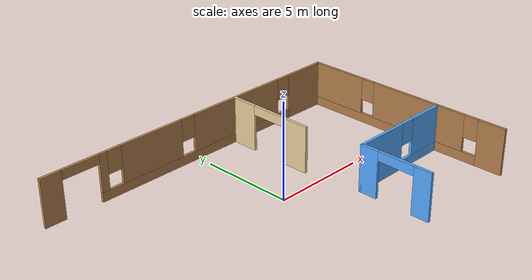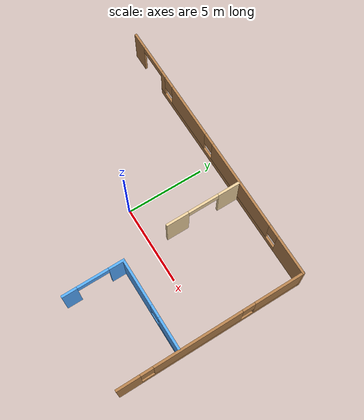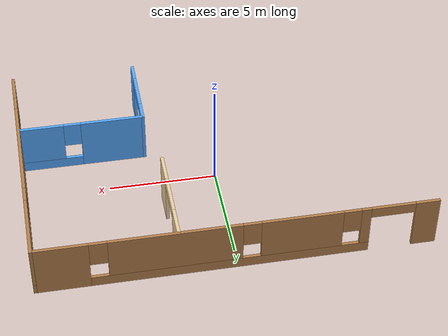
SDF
<sdf version="1.6">
 <model name="mybuilding">
  <link name="Wall_27">
   <pose>8.94289 0 0 0 -0 1.5708</pose>
   <visual name="Wall_27_Visual_0">
    <pose>-5.24969 0 1.25 0 -0 0</pose>
    <geometry><box><size>1.50062 0.15 2.5</size></box></geometry>
    <material>
     <script><uri>file://media/materials/scripts/gazebo.material</uri><name>Gazebo/Wood</name></script>
     <ambient>1 1 1 1</ambient>
     <shader type="pixel"/>
     <diffuse>1 1 1 1</diffuse>
     <specular>0.2 0.2 0.2 1</specular>
     <emissive>0 0 0 1</emissive>
    </material>
    <meta><layer>0</layer></meta>
   </visual>
   <visual name="Wall_27_Visual_1">
    <pose>0.750309 0 0.25 0 -0 0</pose>
    <geometry><box><size>10.4994 0.15 0.5</size></box></geometry>
    <material>
     <script><uri>file://media/materials/scripts/gazebo.material</uri><name>Gazebo/Wood</name></script>
     <ambient>1 1 1 1</ambient>
     <shader type="pixel"/>
     <diffuse>1 1 1 1</diffuse>
     <specular>0.2 0.2 0.2 1</specular>
     <emissive>0 0 0 1</emissive>
    </material>
    <meta><layer>0</layer></meta>
   </visual>
   <visual name="Wall_27_Visual_2">
    <pose>-0.87905 0 1.5 0 -0 0</pose>
    <geometry><box><size>5.64067 0.15 2</size></box></geometry>
    <material>
     <script><uri>file://media/materials/scripts/gazebo.material</uri><name>Gazebo/Wood</name></script>
     <ambient>1 1 1 1</ambient>
     <shader type="pixel"/>
     <diffuse>1 1 1 1</diffuse>
     <specular>0.2 0.2 0.2 1</specular>
     <emissive>0 0 0 1</emissive>
    </material>
    <meta><layer>0</layer></meta>
   </visual>
   <visual name="Wall_27_Visual_3">
    <pose>4.37064 0 1.5 0 -0 0</pose>
    <geometry><box><size>3.25872 0.15 2</size></box></geometry>
    <material>
     <script><uri>file://media/materials/scripts/gazebo.material</uri><name>Gazebo/Wood</name></script>
     <ambient>1 1 1 1</ambient>
     <shader type="pixel"/>
     <diffuse>1 1 1 1</diffuse>
     <specular>0.2 0.2 0.2 1</specular>
     <emissive>0 0 0 1</emissive>
    </material>
    <meta><layer>0</layer></meta>
   </visual>
   <visual name="Wall_27_Visual_4">
    <pose>-4.09938 0 1.9 0 -0 0</pose>
    <geometry><box><size>0.8 0.15 1.2</size></box></geometry>
    <material>
     <script><uri>file://media/materials/scripts/gazebo.material</uri><name>Gazebo/Wood</name></script>
     <ambient>1 1 1 1</ambient>
     <shader type="pixel"/>
     <diffuse>1 1 1 1</diffuse>
     <specular>0.2 0.2 0.2 1</specular>
     <emissive>0 0 0 1</emissive>
    </material>
    <meta><layer>0</layer></meta>
   </visual>
   <visual name="Wall_27_Visual_5">
    <pose>2.34128 0 1.9 0 -0 0</pose>
    <geometry><box><size>0.8 0.15 1.2</size></box></geometry>
    <material>
     <script><uri>file://media/materials/scripts/gazebo.material</uri><name>Gazebo/Wood</name></script>
     <ambient>1 1 1 1</ambient>
     <shader type="pixel"/>
     <diffuse>1 1 1 1</diffuse>
     <specular>0.2 0.2 0.2 1</specular>
     <emissive>0 0 0 1</emissive>
    </material>
    <meta><layer>0</layer></meta>
   </visual>
   <collision name="Wall_27_Collision_0">
    <pose>-5.24969 0 1.25 0 -0 0</pose>
    <geometry><box><size>1.50062 0.15 2.5</size></box></geometry>
    <surface>
     <friction>
      <ode><mu>1</mu><mu2>1</mu2><fdir1>0 0 0</fdir1><slip1>0</slip1><slip2>0</slip2></ode>
      <torsional>
       <coefficient>1</coefficient>
       <patch_radius>0</patch_radius>
       <surface_radius>0</surface_radius>
       <use_patch_radius>1</use_patch_radius>
       <ode><slip>0</slip></ode>
      </torsional>
     </friction>
     <bounce><restitution_coefficient>0</restitution_coefficient><threshold>1e+06</threshold></bounce>
     <contact>
      <collide_without_contact>0</collide_without_contact>
      <collide_without_contact_bitmask>1</collide_without_contact_bitmask>
      <collide_bitmask>1</collide_bitmask>
      <ode>
       <soft_cfm>0</soft_cfm>
       <soft_erp>0.2</soft_erp>
       <kp>1e+13</kp>
       <kd>1</kd>
       <max_vel>0.01</max_vel>
       <min_depth>0</min_depth>
      </ode>
      <bullet>
       <split_impulse>1</split_impulse>
       <split_impulse_penetration_threshold>-0.01</split_impulse_penetration_threshold>
       <soft_cfm>0</soft_cfm>
       <soft_erp>0.2</soft_erp>
       <kp>1e+13</kp>
       <kd>1</kd>
      </bullet>
     </contact>
    </surface>
   </collision>
   <collision name="Wall_27_Collision_1">
    <pose>0.750309 0 0.25 0 -0 0</pose>
    <geometry><box><size>10.4994 0.15 0.5</size></box></geometry>
    <surface>
     <friction>
      <ode><mu>1</mu><mu2>1</mu2><fdir1>0 0 0</fdir1><slip1>0</slip1><slip2>0</slip2></ode>
      <torsional>
       <coefficient>1</coefficient>
       <patch_radius>0</patch_radius>
       <surface_radius>0</surface_radius>
       <use_patch_radius>1</use_patch_radius>
       <ode><slip>0</slip></ode>
      </torsional>
     </friction>
     <bounce><restitution_coefficient>0</restitution_coefficient><threshold>1e+06</threshold></bounce>
     <contact>
      <collide_without_contact>0</collide_without_contact>
      <collide_without_contact_bitmask>1</collide_without_contact_bitmask>
      <collide_bitmask>1</collide_bitmask>
      <ode>
       <soft_cfm>0</soft_cfm>
       <soft_erp>0.2</soft_erp>
       <kp>1e+13</kp>
       <kd>1</kd>
       <max_vel>0.01</max_vel>
       <min_depth>0</min_depth>
      </ode>
      <bullet>
       <split_impulse>1</split_impulse>
       <split_impulse_penetration_threshold>-0.01</split_impulse_penetration_threshold>
       <soft_cfm>0</soft_cfm>
       <soft_erp>0.2</soft_erp>
       <kp>1e+13</kp>
       <kd>1</kd>
      </bullet>
     </contact>
    </surface>
   </collision>
   <collision name="Wall_27_Collision_2">
    <pose>-0.87905 0 1.5 0 -0 0</pose>
    <geometry><box><size>5.64067 0.15 2</size></box></geometry>
    <surface>
     <friction>
      <ode><mu>1</mu><mu2>1</mu2><fdir1>0 0 0</fdir1><slip1>0</slip1><slip2>0</slip2></ode>
      <torsional>
       <coefficient>1</coefficient>
       <patch_radius>0</patch_radius>
       <surface_radius>0</surface_radius>
       <use_patch_radius>1</use_patch_radius>
       <ode><slip>0</slip></ode>
      </torsional>
     </friction>
     <bounce><restitution_coefficient>0</restitution_coefficient><threshold>1e+06</threshold></bounce>
     <contact>
      <collide_without_contact>0</collide_without_contact>
      <collide_without_contact_bitmask>1</collide_without_contact_bitmask>
      <collide_bitmask>1</collide_bitmask>
      <ode>
       <soft_cfm>0</soft_cfm>
       <soft_erp>0.2</soft_erp>
       <kp>1e+13</kp>
       <kd>1</kd>
       <max_vel>0.01</max_vel>
       <min_depth>0</min_depth>
      </ode>
      <bullet>
       <split_impulse>1</split_impulse>
       <split_impulse_penetration_threshold>-0.01</split_impulse_penetration_threshold>
       <soft_cfm>0</soft_cfm>
       <soft_erp>0.2</soft_erp>
       <kp>1e+13</kp>
       <kd>1</kd>
      </bullet>
     </contact>
    </surface>
   </collision>
   <collision name="Wall_27_Collision_3">
    <pose>4.37064 0 1.5 0 -0 0</pose>
    <geometry><box><size>3.25872 0.15 2</size></box></geometry>
    <surface>
     <friction>
      <ode><mu>1</mu><mu2>1</mu2><fdir1>0 0 0</fdir1><slip1>0</slip1><slip2>0</slip2></ode>
      <torsional>
       <coefficient>1</coefficient>
       <patch_radius>0</patch_radius>
       <surface_radius>0</surface_radius>
       <use_patch_radius>1</use_patch_radius>
       <ode><slip>0</slip></ode>
      </torsional>
     </friction>
     <bounce><restitution_coefficient>0</restitution_coefficient><threshold>1e+06</threshold></bounce>
     <contact>
      <collide_without_contact>0</collide_without_contact>
      <collide_without_contact_bitmask>1</collide_without_contact_bitmask>
      <collide_bitmask>1</collide_bitmask>
      <ode>
       <soft_cfm>0</soft_cfm>
       <soft_erp>0.2</soft_erp>
       <kp>1e+13</kp>
       <kd>1</kd>
       <max_vel>0.01</max_vel>
       <min_depth>0</min_depth>
      </ode>
      <bullet>
       <split_impulse>1</split_impulse>
       <split_impulse_penetration_threshold>-0.01</split_impulse_penetration_threshold>
       <soft_cfm>0</soft_cfm>
       <soft_erp>0.2</soft_erp>
       <kp>1e+13</kp>
       <kd>1</kd>
      </bullet>
     </contact>
    </surface>
   </collision>
   <collision name="Wall_27_Collision_4">
    <pose>-4.09938 0 1.9 0 -0 0</pose>
    <geometry><box><size>0.8 0.15 1.2</size></box></geometry>
    <surface>
     <friction>
      <ode><mu>1</mu><mu2>1</mu2><fdir1>0 0 0</fdir1><slip1>0</slip1><slip2>0</slip2></ode>
      <torsional>
       <coefficient>1</coefficient>
       <patch_radius>0</patch_radius>
       <surface_radius>0</surface_radius>
       <use_patch_radius>1</use_patch_radius>
       <ode><slip>0</slip></ode>
      </torsional>
     </friction>
     <bounce><restitution_coefficient>0</restitution_coefficient><threshold>1e+06</threshold></bounce>
     <contact>
      <collide_without_contact>0</collide_without_contact>
      <collide_without_contact_bitmask>1</collide_without_contact_bitmask>
      <collide_bitmask>1</collide_bitmask>
      <ode>
       <soft_cfm>0</soft_cfm>
       <soft_erp>0.2</soft_erp>
       <kp>1e+13</kp>
       <kd>1</kd>
       <max_vel>0.01</max_vel>
       <min_depth>0</min_depth>
      </ode>
      <bullet>
       <split_impulse>1</split_impulse>
       <split_impulse_penetration_threshold>-0.01</split_impulse_penetration_threshold>
       <soft_cfm>0</soft_cfm>
       <soft_erp>0.2</soft_erp>
       <kp>1e+13</kp>
       <kd>1</kd>
      </bullet>
     </contact>
    </surface>
   </collision>
   <collision name="Wall_27_Collision_5">
    <pose>2.34128 0 1.9 0 -0 0</pose>
    <geometry><box><size>0.8 0.15 1.2</size></box></geometry>
    <surface>
     <friction>
      <ode><mu>1</mu><mu2>1</mu2><fdir1>0 0 0</fdir1><slip1>0</slip1><slip2>0</slip2></ode>
      <torsional>
       <coefficient>1</coefficient>
       <patch_radius>0</patch_radius>
       <surface_radius>0</surface_radius>
       <use_patch_radius>1</use_patch_radius>
       <ode><slip>0</slip></ode>
      </torsional>
     </friction>
     <bounce><restitution_coefficient>0</restitution_coefficient><threshold>1e+06</threshold></bounce>
     <contact>
      <collide_without_contact>0</collide_without_contact>
      <collide_without_contact_bitmask>1</collide_without_contact_bitmask>
      <collide_bitmask>1</collide_bitmask>
      <ode>
       <soft_cfm>0</soft_cfm>
       <soft_erp>0.2</soft_erp>
       <kp>1e+13</kp>
       <kd>1</kd>
       <max_vel>0.01</max_vel>
       <min_depth>0</min_depth>
      </ode>
      <bullet>
       <split_impulse>1</split_impulse>
       <split_impulse_penetration_threshold>-0.01</split_impulse_penetration_threshold>
       <soft_cfm>0</soft_cfm>
       <soft_erp>0.2</soft_erp>
       <kp>1e+13</kp>
       <kd>1</kd>
      </bullet>
     </contact>
    </surface>
   </collision>
  </link>
  <link name="Wall_28">
   <pose>0.01789 5.925 0 0 -0 3.14159</pose>
   <visual name="Wall_28_Visual_0">
    <pose>-7.74223 0 1.25 0 -0 0</pose>
    <geometry><box><size>2.51553 0.15 2.5</size></box></geometry>
    <material>
     <script><uri>file://media/materials/scripts/gazebo.material</uri><name>Gazebo/Wood</name></script>
     <ambient>1 1 1 1</ambient>
     <shader type="pixel"/>
     <diffuse>1 1 1 1</diffuse>
     <specular>0.2 0.2 0.2 1</specular>
     <emissive>0 0 0 1</emissive>
    </material>
    <meta><layer>0</layer></meta>
   </visual>
   <visual name="Wall_28_Visual_1">
    <pose>8.4451 0 1.25 0 -0 0</pose>
    <geometry><box><size>1.1098 0.15 2.5</size></box></geometry>
    <material>
     <script><uri>file://media/materials/scripts/gazebo.material</uri><name>Gazebo/Wood</name></script>
     <ambient>1 1 1 1</ambient>
     <shader type="pixel"/>
     <diffuse>1 1 1 1</diffuse>
     <specular>0.2 0.2 0.2 1</specular>
     <emissive>0 0 0 1</emissive>
    </material>
    <meta><layer>0</layer></meta>
   </visual>
   <visual name="Wall_28_Visual_2">
    <pose>-0.297132 0 0.25 0 -0 0</pose>
    <geometry><box><size>12.3747 0.15 0.5</size></box></geometry>
    <material>
     <script><uri>file://media/materials/scripts/gazebo.material</uri><name>Gazebo/Wood</name></script>
     <ambient>1 1 1 1</ambient>
     <shader type="pixel"/>
     <diffuse>1 1 1 1</diffuse>
     <specular>0.2 0.2 0.2 1</specular>
     <emissive>0 0 0 1</emissive>
    </material>
    <meta><layer>0</layer></meta>
   </visual>
   <visual name="Wall_28_Visual_3">
    <pose>-2.73968 0 1.5 0 -0 0</pose>
    <geometry><box><size>5.88958 0.15 2</size></box></geometry>
    <material>
     <script><uri>file://media/materials/scripts/gazebo.material</uri><name>Gazebo/Wood</name></script>
     <ambient>1 1 1 1</ambient>
     <shader type="pixel"/>
     <diffuse>1 1 1 1</diffuse>
     <specular>0.2 0.2 0.2 1</specular>
     <emissive>0 0 0 1</emissive>
    </material>
    <meta><layer>0</layer></meta>
   </visual>
   <visual name="Wall_28_Visual_4">
    <pose>2.82979 0 1.5 0 -0 0</pose>
    <geometry><box><size>3.64935 0.15 2</size></box></geometry>
    <material>
     <script><uri>file://media/materials/scripts/gazebo.material</uri><name>Gazebo/Wood</name></script>
     <ambient>1 1 1 1</ambient>
     <shader type="pixel"/>
     <diffuse>1 1 1 1</diffuse>
     <specular>0.2 0.2 0.2 1</specular>
     <emissive>0 0 0 1</emissive>
    </material>
    <meta><layer>0</layer></meta>
   </visual>
   <visual name="Wall_28_Visual_5">
    <pose>5.67233 0 1.5 0 -0 0</pose>
    <geometry><box><size>0.435745 0.15 2</size></box></geometry>
    <material>
     <script><uri>file://media/materials/scripts/gazebo.material</uri><name>Gazebo/Wood</name></script>
     <ambient>1 1 1 1</ambient>
     <shader type="pixel"/>
     <diffuse>1 1 1 1</diffuse>
     <specular>0.2 0.2 0.2 1</specular>
     <emissive>0 0 0 1</emissive>
    </material>
    <meta><layer>0</layer></meta>
   </visual>
   <visual name="Wall_28_Visual_6">
    <pose>-6.08447 0 1.9 0 -0 0</pose>
    <geometry><box><size>0.8 0.15 1.2</size></box></geometry>
    <material>
     <script><uri>file://media/materials/scripts/gazebo.material</uri><name>Gazebo/Wood</name></script>
     <ambient>1 1 1 1</ambient>
     <shader type="pixel"/>
     <diffuse>1 1 1 1</diffuse>
     <specular>0.2 0.2 0.2 1</specular>
     <emissive>0 0 0 1</emissive>
    </material>
    <meta><layer>0</layer></meta>
   </visual>
   <visual name="Wall_28_Visual_7">
    <pose>0.605112 0 1.9 0 -0 0</pose>
    <geometry><box><size>0.8 0.15 1.2</size></box></geometry>
    <material>
     <script><uri>file://media/materials/scripts/gazebo.material</uri><name>Gazebo/Wood</name></script>
     <ambient>1 1 1 1</ambient>
     <shader type="pixel"/>
     <diffuse>1 1 1 1</diffuse>
     <specular>0.2 0.2 0.2 1</specular>
     <emissive>0 0 0 1</emissive>
    </material>
    <meta><layer>0</layer></meta>
   </visual>
   <visual name="Wall_28_Visual_8">
    <pose>5.05446 0 1.9 0 -0 0</pose>
    <geometry><box><size>0.8 0.15 1.2</size></box></geometry>
    <material>
     <script><uri>file://media/materials/scripts/gazebo.material</uri><name>Gazebo/Wood</name></script>
     <ambient>1 1 1 1</ambient>
     <shader type="pixel"/>
     <diffuse>1 1 1 1</diffuse>
     <specular>0.2 0.2 0.2 1</specular>
     <emissive>0 0 0 1</emissive>
    </material>
    <meta><layer>0</layer></meta>
   </visual>
   <visual name="Wall_28_Visual_9">
    <pose>6.8902 0 2.25 0 -0 0</pose>
    <geometry><box><size>2 0.15 0.5</size></box></geometry>
    <material>
     <script><uri>file://media/materials/scripts/gazebo.material</uri><name>Gazebo/Wood</name></script>
     <ambient>1 1 1 1</ambient>
     <shader type="pixel"/>
     <diffuse>1 1 1 1</diffuse>
     <specular>0.2 0.2 0.2 1</specular>
     <emissive>0 0 0 1</emissive>
    </material>
    <meta><layer>0</layer></meta>
   </visual>
   <collision name="Wall_28_Collision_0">
    <pose>-7.74223 0 1.25 0 -0 0</pose>
    <geometry><box><size>2.51553 0.15 2.5</size></box></geometry>
    <surface>
     <friction>
      <ode><mu>1</mu><mu2>1</mu2><fdir1>0 0 0</fdir1><slip1>0</slip1><slip2>0</slip2></ode>
      <torsional>
       <coefficient>1</coefficient>
       <patch_radius>0</patch_radius>
       <surface_radius>0</surface_radius>
       <use_patch_radius>1</use_patch_radius>
       <ode><slip>0</slip></ode>
      </torsional>
     </friction>
     <bounce><restitution_coefficient>0</restitution_coefficient><threshold>1e+06</threshold></bounce>
     <contact>
      <collide_without_contact>0</collide_without_contact>
      <collide_without_contact_bitmask>1</collide_without_contact_bitmask>
      <collide_bitmask>1</collide_bitmask>
      <ode>
       <soft_cfm>0</soft_cfm>
       <soft_erp>0.2</soft_erp>
       <kp>1e+13</kp>
       <kd>1</kd>
       <max_vel>0.01</max_vel>
       <min_depth>0</min_depth>
      </ode>
      <bullet>
       <split_impulse>1</split_impulse>
       <split_impulse_penetration_threshold>-0.01</split_impulse_penetration_threshold>
       <soft_cfm>0</soft_cfm>
       <soft_erp>0.2</soft_erp>
       <kp>1e+13</kp>
       <kd>1</kd>
      </bullet>
     </contact>
    </surface>
   </collision>
   <collision name="Wall_28_Collision_1">
    <pose>8.4451 0 1.25 0 -0 0</pose>
    <geometry><box><size>1.1098 0.15 2.5</size></box></geometry>
    <surface>
     <friction>
      <ode><mu>1</mu><mu2>1</mu2><fdir1>0 0 0</fdir1><slip1>0</slip1><slip2>0</slip2></ode>
      <torsional>
       <coefficient>1</coefficient>
       <patch_radius>0</patch_radius>
       <surface_radius>0</surface_radius>
       <use_patch_radius>1</use_patch_radius>
       <ode><slip>0</slip></ode>
      </torsional>
     </friction>
     <bounce><restitution_coefficient>0</restitution_coefficient><threshold>1e+06</threshold></bounce>
     <contact>
      <collide_without_contact>0</collide_without_contact>
      <collide_without_contact_bitmask>1</collide_without_contact_bitmask>
      <collide_bitmask>1</collide_bitmask>
      <ode>
       <soft_cfm>0</soft_cfm>
       <soft_erp>0.2</soft_erp>
       <kp>1e+13</kp>
       <kd>1</kd>
       <max_vel>0.01</max_vel>
       <min_depth>0</min_depth>
      </ode>
      <bullet>
       <split_impulse>1</split_impulse>
       <split_impulse_penetration_threshold>-0.01</split_impulse_penetration_threshold>
       <soft_cfm>0</soft_cfm>
       <soft_erp>0.2</soft_erp>
       <kp>1e+13</kp>
       <kd>1</kd>
      </bullet>
     </contact>
    </surface>
   </collision>
   <collision name="Wall_28_Collision_2">
    <pose>-0.297132 0 0.25 0 -0 0</pose>
    <geometry><box><size>12.3747 0.15 0.5</size></box></geometry>
    <surface>
     <friction>
      <ode><mu>1</mu><mu2>1</mu2><fdir1>0 0 0</fdir1><slip1>0</slip1><slip2>0</slip2></ode>
      <torsional>
       <coefficient>1</coefficient>
       <patch_radius>0</patch_radius>
       <surface_radius>0</surface_radius>
       <use_patch_radius>1</use_patch_radius>
       <ode><slip>0</slip></ode>
      </torsional>
     </friction>
     <bounce><restitution_coefficient>0</restitution_coefficient><threshold>1e+06</threshold></bounce>
     <contact>
      <collide_without_contact>0</collide_without_contact>
      <collide_without_contact_bitmask>1</collide_without_contact_bitmask>
      <collide_bitmask>1</collide_bitmask>
      <ode>
       <soft_cfm>0</soft_cfm>
       <soft_erp>0.2</soft_erp>
       <kp>1e+13</kp>
       <kd>1</kd>
       <max_vel>0.01</max_vel>
       <min_depth>0</min_depth>
      </ode>
      <bullet>
       <split_impulse>1</split_impulse>
       <split_impulse_penetration_threshold>-0.01</split_impulse_penetration_threshold>
       <soft_cfm>0</soft_cfm>
       <soft_erp>0.2</soft_erp>
       <kp>1e+13</kp>
       <kd>1</kd>
      </bullet>
     </contact>
    </surface>
   </collision>
   <collision name="Wall_28_Collision_4">
    <pose>2.82979 0 1.5 0 -0 0</pose>
    <geometry><box><size>3.64935 0.15 2</size></box></geometry>
    <surface>
     <friction>
      <ode><mu>1</mu><mu2>1</mu2><fdir1>0 0 0</fdir1><slip1>0</slip1><slip2>0</slip2></ode>
      <torsional>
       <coefficient>1</coefficient>
       <patch_radius>0</patch_radius>
       <surface_radius>0</surface_radius>
       <use_patch_radius>1</use_patch_radius>
       <ode><slip>0</slip></ode>
      </torsional>
     </friction>
     <bounce><restitution_coefficient>0</restitution_coefficient><threshold>1e+06</threshold></bounce>
     <contact>
      <collide_without_contact>0</collide_without_contact>
      <collide_without_contact_bitmask>1</collide_without_contact_bitmask>
      <collide_bitmask>1</collide_bitmask>
      <ode>
       <soft_cfm>0</soft_cfm>
       <soft_erp>0.2</soft_erp>
       <kp>1e+13</kp>
       <kd>1</kd>
       <max_vel>0.01</max_vel>
       <min_depth>0</min_depth>
      </ode>
      <bullet>
       <split_impulse>1</split_impulse>
       <split_impulse_penetration_threshold>-0.01</split_impulse_penetration_threshold>
       <soft_cfm>0</soft_cfm>
       <soft_erp>0.2</soft_erp>
       <kp>1e+13</kp>
       <kd>1</kd>
      </bullet>
     </contact>
    </surface>
   </collision>
   <collision name="Wall_28_Collision_3">
    <pose>-2.73968 0 1.5 0 -0 0</pose>
    <geometry><box><size>5.88958 0.15 2</size></box></geometry>
    <surface>
     <friction>
      <ode><mu>1</mu><mu2>1</mu2><fdir1>0 0 0</fdir1><slip1>0</slip1><slip2>0</slip2></ode>
      <torsional>
       <coefficient>1</coefficient>
       <patch_radius>0</patch_radius>
       <surface_radius>0</surface_radius>
       <use_patch_radius>1</use_patch_radius>
       <ode><slip>0</slip></ode>
      </torsional>
     </friction>
     <bounce><restitution_coefficient>0</restitution_coefficient><threshold>1e+06</threshold></bounce>
     <contact>
      <collide_without_contact>0</collide_without_contact>
      <collide_without_contact_bitmask>1</collide_without_contact_bitmask>
      <collide_bitmask>1</collide_bitmask>
      <ode>
       <soft_cfm>0</soft_cfm>
       <soft_erp>0.2</soft_erp>
       <kp>1e+13</kp>
       <kd>1</kd>
       <max_vel>0.01</max_vel>
       <min_depth>0</min_depth>
      </ode>
      <bullet>
       <split_impulse>1</split_impulse>
       <split_impulse_penetration_threshold>-0.01</split_impulse_penetration_threshold>
       <soft_cfm>0</soft_cfm>
       <soft_erp>0.2</soft_erp>
       <kp>1e+13</kp>
       <kd>1</kd>
      </bullet>
     </contact>
    </surface>
   </collision>
   <collision name="Wall_28_Collision_5">
    <pose>5.67233 0 1.5 0 -0 0</pose>
    <geometry><box><size>0.435745 0.15 2</size></box></geometry>
    <surface>
     <friction>
      <ode><mu>1</mu><mu2>1</mu2><fdir1>0 0 0</fdir1><slip1>0</slip1><slip2>0</slip2></ode>
      <torsional>
       <coefficient>1</coefficient>
       <patch_radius>0</patch_radius>
       <surface_radius>0</surface_radius>
       <use_patch_radius>1</use_patch_radius>
       <ode><slip>0</slip></ode>
      </torsional>
     </friction>
     <bounce><restitution_coefficient>0</restitution_coefficient><threshold>1e+06</threshold></bounce>
     <contact>
      <collide_without_contact>0</collide_without_contact>
      <collide_without_contact_bitmask>1</collide_without_contact_bitmask>
      <collide_bitmask>1</collide_bitmask>
      <ode>
       <soft_cfm>0</soft_cfm>
       <soft_erp>0.2</soft_erp>
       <kp>1e+13</kp>
       <kd>1</kd>
       <max_vel>0.01</max_vel>
       <min_depth>0</min_depth>
      </ode>
      <bullet>
       <split_impulse>1</split_impulse>
       <split_impulse_penetration_threshold>-0.01</split_impulse_penetration_threshold>
       <soft_cfm>0</soft_cfm>
       <soft_erp>0.2</soft_erp>
       <kp>1e+13</kp>
       <kd>1</kd>
      </bullet>
     </contact>
    </surface>
   </collision>
   <collision name="Wall_28_Collision_6">
    <pose>-6.08447 0 1.9 0 -0 0</pose>
    <geometry><box><size>0.8 0.15 1.2</size></box></geometry>
    <surface>
     <friction>
      <ode><mu>1</mu><mu2>1</mu2><fdir1>0 0 0</fdir1><slip1>0</slip1><slip2>0</slip2></ode>
      <torsional>
       <coefficient>1</coefficient>
       <patch_radius>0</patch_radius>
       <surface_radius>0</surface_radius>
       <use_patch_radius>1</use_patch_radius>
       <ode><slip>0</slip></ode>
      </torsional>
     </friction>
     <bounce><restitution_coefficient>0</restitution_coefficient><threshold>1e+06</threshold></bounce>
     <contact>
      <collide_without_contact>0</collide_without_contact>
      <collide_without_contact_bitmask>1</collide_without_contact_bitmask>
      <collide_bitmask>1</collide_bitmask>
      <ode>
       <soft_cfm>0</soft_cfm>
       <soft_erp>0.2</soft_erp>
       <kp>1e+13</kp>
       <kd>1</kd>
       <max_vel>0.01</max_vel>
       <min_depth>0</min_depth>
      </ode>
      <bullet>
       <split_impulse>1</split_impulse>
       <split_impulse_penetration_threshold>-0.01</split_impulse_penetration_threshold>
       <soft_cfm>0</soft_cfm>
       <soft_erp>0.2</soft_erp>
       <kp>1e+13</kp>
       <kd>1</kd>
      </bullet>
     </contact>
    </surface>
   </collision>
   <collision name="Wall_28_Collision_7">
    <pose>0.605112 0 1.9 0 -0 0</pose>
    <geometry><box><size>0.8 0.15 1.2</size></box></geometry>
    <surface>
     <friction>
      <ode><mu>1</mu><mu2>1</mu2><fdir1>0 0 0</fdir1><slip1>0</slip1><slip2>0</slip2></ode>
      <torsional>
       <coefficient>1</coefficient>
       <patch_radius>0</patch_radius>
       <surface_radius>0</surface_radius>
       <use_patch_radius>1</use_patch_radius>
       <ode><slip>0</slip></ode>
      </torsional>
     </friction>
     <bounce><restitution_coefficient>0</restitution_coefficient><threshold>1e+06</threshold></bounce>
     <contact>
      <collide_without_contact>0</collide_without_contact>
      <collide_without_contact_bitmask>1</collide_without_contact_bitmask>
      <collide_bitmask>1</collide_bitmask>
      <ode>
       <soft_cfm>0</soft_cfm>
       <soft_erp>0.2</soft_erp>
       <kp>1e+13</kp>
       <kd>1</kd>
       <max_vel>0.01</max_vel>
       <min_depth>0</min_depth>
      </ode>
      <bullet>
       <split_impulse>1</split_impulse>
       <split_impulse_penetration_threshold>-0.01</split_impulse_penetration_threshold>
       <soft_cfm>0</soft_cfm>
       <soft_erp>0.2</soft_erp>
       <kp>1e+13</kp>
       <kd>1</kd>
      </bullet>
     </contact>
    </surface>
   </collision>
   <collision name="Wall_28_Collision_8">
    <pose>5.05446 0 1.9 0 -0 0</pose>
    <geometry><box><size>0.8 0.15 1.2</size></box></geometry>
    <surface>
     <friction>
      <ode><mu>1</mu><mu2>1</mu2><fdir1>0 0 0</fdir1><slip1>0</slip1><slip2>0</slip2></ode>
      <torsional>
       <coefficient>1</coefficient>
       <patch_radius>0</patch_radius>
       <surface_radius>0</surface_radius>
       <use_patch_radius>1</use_patch_radius>
       <ode><slip>0</slip></ode>
      </torsional>
     </friction>
     <bounce><restitution_coefficient>0</restitution_coefficient><threshold>1e+06</threshold></bounce>
     <contact>
      <collide_without_contact>0</collide_without_contact>
      <collide_without_contact_bitmask>1</collide_without_contact_bitmask>
      <collide_bitmask>1</collide_bitmask>
      <ode>
       <soft_cfm>0</soft_cfm>
       <soft_erp>0.2</soft_erp>
       <kp>1e+13</kp>
       <kd>1</kd>
       <max_vel>0.01</max_vel>
       <min_depth>0</min_depth>
      </ode>
      <bullet>
       <split_impulse>1</split_impulse>
       <split_impulse_penetration_threshold>-0.01</split_impulse_penetration_threshold>
       <soft_cfm>0</soft_cfm>
       <soft_erp>0.2</soft_erp>
       <kp>1e+13</kp>
       <kd>1</kd>
      </bullet>
     </contact>
    </surface>
   </collision>
   <collision name="Wall_28_Collision_9">
    <pose>6.8902 0 2.25 0 -0 0</pose>
    <geometry><box><size>2 0.15 0.5</size></box></geometry>
    <surface>
     <friction>
      <ode><mu>1</mu><mu2>1</mu2><fdir1>0 0 0</fdir1><slip1>0</slip1><slip2>0</slip2></ode>
      <torsional>
       <coefficient>1</coefficient>
       <patch_radius>0</patch_radius>
       <surface_radius>0</surface_radius>
       <use_patch_radius>1</use_patch_radius>
       <ode><slip>0</slip></ode>
      </torsional>
     </friction>
     <bounce><restitution_coefficient>0</restitution_coefficient><threshold>1e+06</threshold></bounce>
     <contact>
      <collide_without_contact>0</collide_without_contact>
      <collide_without_contact_bitmask>1</collide_without_contact_bitmask>
      <collide_bitmask>1</collide_bitmask>
      <ode>
       <soft_cfm>0</soft_cfm>
       <soft_erp>0.2</soft_erp>
       <kp>1e+13</kp>
       <kd>1</kd>
       <max_vel>0.01</max_vel>
       <min_depth>0</min_depth>
      </ode>
      <bullet>
       <split_impulse>1</split_impulse>
       <split_impulse_penetration_threshold>-0.01</split_impulse_penetration_threshold>
       <soft_cfm>0</soft_cfm>
       <soft_erp>0.2</soft_erp>
       <kp>1e+13</kp>
       <kd>1</kd>
      </bullet>
     </contact>
    </surface>
   </collision>
  </link>
  <link name="Wall_37">
   <pose>2.6224 3.49443 0 0 -0 1.5708</pose>
   <visual name="Wall_37_Visual_0">
    <pose>-1.76652 0 1.25 0 -0 0</pose>
    <geometry><box><size>1.46697 0.15 2.5</size></box></geometry>
    <material>
     <script><uri>file://media/materials/scripts/gazebo.material</uri><name>Gazebo/Grey</name></script>
     <ambient>0.921569 0.807843 0.615686 1</ambient>
     <shader type="pixel"/>
     <diffuse>0.7 0.7 0.7 1</diffuse>
     <specular>0.01 0.01 0.01 1</specular>
     <emissive>0 0 0 1</emissive>
    </material>
    <meta><layer>0</layer></meta>
   </visual>
   <visual name="Wall_37_Visual_1">
    <pose>1.73348 0 1.25 0 -0 0</pose>
    <geometry><box><size>1.53303 0.15 2.5</size></box></geometry>
    <material>
     <script><uri>file://media/materials/scripts/gazebo.material</uri><name>Gazebo/Grey</name></script>
     <ambient>0.921569 0.807843 0.615686 1</ambient>
     <shader type="pixel"/>
     <diffuse>0.7 0.7 0.7 1</diffuse>
     <specular>0.01 0.01 0.01 1</specular>
     <emissive>0 0 0 1</emissive>
    </material>
    <meta><layer>0</layer></meta>
   </visual>
   <visual name="Wall_37_Visual_2">
    <pose>-0.033031 0 2.25 0 -0 0</pose>
    <geometry><box><size>2 0.15 0.5</size></box></geometry>
    <material>
     <script><uri>file://media/materials/scripts/gazebo.material</uri><name>Gazebo/Grey</name></script>
     <ambient>0.921569 0.807843 0.615686 1</ambient>
     <shader type="pixel"/>
     <diffuse>0.7 0.7 0.7 1</diffuse>
     <specular>0.01 0.01 0.01 1</specular>
     <emissive>0 0 0 1</emissive>
    </material>
    <meta><layer>0</layer></meta>
   </visual>
   <collision name="Wall_37_Collision_0">
    <pose>-1.76652 0 1.25 0 -0 0</pose>
    <geometry><box><size>1.46697 0.15 2.5</size></box></geometry>
    <surface>
     <friction>
      <ode><mu>1</mu><mu2>1</mu2><fdir1>0 0 0</fdir1><slip1>0</slip1><slip2>0</slip2></ode>
      <torsional>
       <coefficient>1</coefficient>
       <patch_radius>0</patch_radius>
       <surface_radius>0</surface_radius>
       <use_patch_radius>1</use_patch_radius>
       <ode><slip>0</slip></ode>
      </torsional>
     </friction>
     <bounce><restitution_coefficient>0</restitution_coefficient><threshold>1e+06</threshold></bounce>
     <contact>
      <collide_without_contact>0</collide_without_contact>
      <collide_without_contact_bitmask>1</collide_without_contact_bitmask>
      <collide_bitmask>1</collide_bitmask>
      <ode>
       <soft_cfm>0</soft_cfm>
       <soft_erp>0.2</soft_erp>
       <kp>1e+13</kp>
       <kd>1</kd>
       <max_vel>0.01</max_vel>
       <min_depth>0</min_depth>
      </ode>
      <bullet>
       <split_impulse>1</split_impulse>
       <split_impulse_penetration_threshold>-0.01</split_impulse_penetration_threshold>
       <soft_cfm>0</soft_cfm>
       <soft_erp>0.2</soft_erp>
       <kp>1e+13</kp>
       <kd>1</kd>
      </bullet>
     </contact>
    </surface>
   </collision>
   <collision name="Wall_37_Collision_1">
    <pose>1.73348 0 1.25 0 -0 0</pose>
    <geometry><box><size>1.53303 0.15 2.5</size></box></geometry>
    <surface>
     <friction>
      <ode><mu>1</mu><mu2>1</mu2><fdir1>0 0 0</fdir1><slip1>0</slip1><slip2>0</slip2></ode>
      <torsional>
       <coefficient>1</coefficient>
       <patch_radius>0</patch_radius>
       <surface_radius>0</surface_radius>
       <use_patch_radius>1</use_patch_radius>
       <ode><slip>0</slip></ode>
      </torsional>
     </friction>
     <bounce><restitution_coefficient>0</restitution_coefficient><threshold>1e+06</threshold></bounce>
     <contact>
      <collide_without_contact>0</collide_without_contact>
      <collide_without_contact_bitmask>1</collide_without_contact_bitmask>
      <collide_bitmask>1</collide_bitmask>
      <ode>
       <soft_cfm>0</soft_cfm>
       <soft_erp>0.2</soft_erp>
       <kp>1e+13</kp>
       <kd>1</kd>
       <max_vel>0.01</max_vel>
       <min_depth>0</min_depth>
      </ode>
      <bullet>
       <split_impulse>1</split_impulse>
       <split_impulse_penetration_threshold>-0.01</split_impulse_penetration_threshold>
       <soft_cfm>0</soft_cfm>
       <soft_erp>0.2</soft_erp>
       <kp>1e+13</kp>
       <kd>1</kd>
      </bullet>
     </contact>
    </surface>
   </collision>
   <collision name="Wall_37_Collision_2">
    <pose>-0.033031 0 2.25 0 -0 0</pose>
    <geometry><box><size>2 0.15 0.5</size></box></geometry>
    <surface>
     <friction>
      <ode><mu>1</mu><mu2>1</mu2><fdir1>0 0 0</fdir1><slip1>0</slip1><slip2>0</slip2></ode>
      <torsional>
       <coefficient>1</coefficient>
       <patch_radius>0</patch_radius>
       <surface_radius>0</surface_radius>
       <use_patch_radius>1</use_patch_radius>
       <ode><slip>0</slip></ode>
      </torsional>
     </friction>
     <bounce><restitution_coefficient>0</restitution_coefficient><threshold>1e+06</threshold></bounce>
     <contact>
      <collide_without_contact>0</collide_without_contact>
      <collide_without_contact_bitmask>1</collide_without_contact_bitmask>
      <collide_bitmask>1</collide_bitmask>
      <ode>
       <soft_cfm>0</soft_cfm>
       <soft_erp>0.2</soft_erp>
       <kp>1e+13</kp>
       <kd>1</kd>
       <max_vel>0.01</max_vel>
       <min_depth>0</min_depth>
      </ode>
      <bullet>
       <split_impulse>1</split_impulse>
       <split_impulse_penetration_threshold>-0.01</split_impulse_penetration_threshold>
       <soft_cfm>0</soft_cfm>
       <soft_erp>0.2</soft_erp>
       <kp>1e+13</kp>
       <kd>1</kd>
      </bullet>
     </contact>
    </surface>
   </collision>
  </link>
  <link name="Wall_39">
   <pose>3.08427 -3.97901 0 0 -0 1.5708</pose>
   <visual name="Wall_39_Visual_0">
    <pose>-1.51351 0 1.25 0 -0 0</pose>
    <geometry><box><size>0.972974 0.15 2.5</size></box></geometry>
    <material>
     <script><uri>file://media/materials/scripts/gazebo.material</uri><name>Gazebo/Grey</name></script>
     <ambient>0.333333 0.666667 1 1</ambient>
     <shader type="pixel"/>
     <diffuse>0.7 0.7 0.7 1</diffuse>
     <specular>0.01 0.01 0.01 1</specular>
     <emissive>0 0 0 1</emissive>
    </material>
    <meta><layer>0</layer></meta>
   </visual>
   <visual name="Wall_39_Visual_1">
    <pose>1.48649 0 1.25 0 -0 0</pose>
    <geometry><box><size>1.02703 0.15 2.5</size></box></geometry>
    <material>
     <script><uri>file://media/materials/scripts/gazebo.material</uri><name>Gazebo/Grey</name></script>
     <ambient>0.333333 0.666667 1 1</ambient>
     <shader type="pixel"/>
     <diffuse>0.7 0.7 0.7 1</diffuse>
     <specular>0.01 0.01 0.01 1</specular>
     <emissive>0 0 0 1</emissive>
    </material>
    <meta><layer>0</layer></meta>
   </visual>
   <visual name="Wall_39_Visual_2">
    <pose>-0.027026 0 2.25 0 -0 0</pose>
    <geometry><box><size>2 0.15 0.5</size></box></geometry>
    <material>
     <script><uri>file://media/materials/scripts/gazebo.material</uri><name>Gazebo/Grey</name></script>
     <ambient>0.333333 0.666667 1 1</ambient>
     <shader type="pixel"/>
     <diffuse>0.7 0.7 0.7 1</diffuse>
     <specular>0.01 0.01 0.01 1</specular>
     <emissive>0 0 0 1</emissive>
    </material>
    <meta><layer>0</layer></meta>
   </visual>
   <collision name="Wall_39_Collision_0">
    <pose>-1.51351 0 1.25 0 -0 0</pose>
    <geometry><box><size>0.972974 0.15 2.5</size></box></geometry>
    <surface>
     <friction>
      <ode><mu>1</mu><mu2>1</mu2><fdir1>0 0 0</fdir1><slip1>0</slip1><slip2>0</slip2></ode>
      <torsional>
       <coefficient>1</coefficient>
       <patch_radius>0</patch_radius>
       <surface_radius>0</surface_radius>
       <use_patch_radius>1</use_patch_radius>
       <ode><slip>0</slip></ode>
      </torsional>
     </friction>
     <bounce><restitution_coefficient>0</restitution_coefficient><threshold>1e+06</threshold></bounce>
     <contact>
      <collide_without_contact>0</collide_without_contact>
      <collide_without_contact_bitmask>1</collide_without_contact_bitmask>
      <collide_bitmask>1</collide_bitmask>
      <ode>
       <soft_cfm>0</soft_cfm>
       <soft_erp>0.2</soft_erp>
       <kp>1e+13</kp>
       <kd>1</kd>
       <max_vel>0.01</max_vel>
       <min_depth>0</min_depth>
      </ode>
      <bullet>
       <split_impulse>1</split_impulse>
       <split_impulse_penetration_threshold>-0.01</split_impulse_penetration_threshold>
       <soft_cfm>0</soft_cfm>
       <soft_erp>0.2</soft_erp>
       <kp>1e+13</kp>
       <kd>1</kd>
      </bullet>
     </contact>
    </surface>
   </collision>
   <collision name="Wall_39_Collision_2">
    <pose>-0.027026 0 2.25 0 -0 0</pose>
    <geometry><box><size>2 0.15 0.5</size></box></geometry>
    <surface>
     <friction>
      <ode><mu>1</mu><mu2>1</mu2><fdir1>0 0 0</fdir1><slip1>0</slip1><slip2>0</slip2></ode>
      <torsional>
       <coefficient>1</coefficient>
       <patch_radius>0</patch_radius>
       <surface_radius>0</surface_radius>
       <use_patch_radius>1</use_patch_radius>
       <ode><slip>0</slip></ode>
      </torsional>
     </friction>
     <bounce><restitution_coefficient>0</restitution_coefficient><threshold>1e+06</threshold></bounce>
     <contact>
      <collide_without_contact>0</collide_without_contact>
      <collide_without_contact_bitmask>1</collide_without_contact_bitmask>
      <collide_bitmask>1</collide_bitmask>
      <ode>
       <soft_cfm>0</soft_cfm>
       <soft_erp>0.2</soft_erp>
       <kp>1e+13</kp>
       <kd>1</kd>
       <max_vel>0.01</max_vel>
       <min_depth>0</min_depth>
      </ode>
      <bullet>
       <split_impulse>1</split_impulse>
       <split_impulse_penetration_threshold>-0.01</split_impulse_penetration_threshold>
       <soft_cfm>0</soft_cfm>
       <soft_erp>0.2</soft_erp>
       <kp>1e+13</kp>
       <kd>1</kd>
      </bullet>
     </contact>
    </surface>
   </collision>
   <collision name="Wall_39_Collision_1">
    <pose>1.48649 0 1.25 0 -0 0</pose>
    <geometry><box><size>1.02703 0.15 2.5</size></box></geometry>
    <surface>
     <friction>
      <ode><mu>1</mu><mu2>1</mu2><fdir1>0 0 0</fdir1><slip1>0</slip1><slip2>0</slip2></ode>
      <torsional>
       <coefficient>1</coefficient>
       <patch_radius>0</patch_radius>
       <surface_radius>0</surface_radius>
       <use_patch_radius>1</use_patch_radius>
       <ode><slip>0</slip></ode>
      </torsional>
     </friction>
     <bounce><restitution_coefficient>0</restitution_coefficient><threshold>1e+06</threshold></bounce>
     <contact>
      <collide_without_contact>0</collide_without_contact>
      <collide_without_contact_bitmask>1</collide_without_contact_bitmask>
      <collide_bitmask>1</collide_bitmask>
      <ode>
       <soft_cfm>0</soft_cfm>
       <soft_erp>0.2</soft_erp>
       <kp>1e+13</kp>
       <kd>1</kd>
       <max_vel>0.01</max_vel>
       <min_depth>0</min_depth>
      </ode>
      <bullet>
       <split_impulse>1</split_impulse>
       <split_impulse_penetration_threshold>-0.01</split_impulse_penetration_threshold>
       <soft_cfm>0</soft_cfm>
       <soft_erp>0.2</soft_erp>
       <kp>1e+13</kp>
       <kd>1</kd>
      </bullet>
     </contact>
    </surface>
   </collision>
  </link>
  <link name="Wall_40">
   <pose>6.00927 -2.05401 0 0 -0 0</pose>
   <visual name="Wall_40_Visual_0">
    <pose>-1.48233 0 1.25 0 -0 0</pose>
    <geometry><box><size>3.03535 0.15 2.5</size></box></geometry>
    <material>
     <script><uri>file://media/materials/scripts/gazebo.material</uri><name>Gazebo/Grey</name></script>
     <ambient>0.333333 0.666667 1 1</ambient>
     <shader type="pixel"/>
     <diffuse>0.7 0.7 0.7 1</diffuse>
     <specular>0.01 0.01 0.01 1</specular>
     <emissive>0 0 0 1</emissive>
    </material>
    <meta><layer>0</layer></meta>
   </visual>
   <visual name="Wall_40_Visual_1">
    <pose>1.51767 0 0.25 0 -0 0</pose>
    <geometry><box><size>2.96465 0.15 0.5</size></box></geometry>
    <material>
     <script><uri>file://media/materials/scripts/gazebo.material</uri><name>Gazebo/Grey</name></script>
     <ambient>0.333333 0.666667 1 1</ambient>
     <shader type="pixel"/>
     <diffuse>0.7 0.7 0.7 1</diffuse>
     <specular>0.01 0.01 0.01 1</specular>
     <emissive>0 0 0 1</emissive>
    </material>
    <meta><layer>0</layer></meta>
   </visual>
   <visual name="Wall_40_Visual_2">
    <pose>1.91767 0 1.5 0 -0 0</pose>
    <geometry><box><size>2.16465 0.15 2</size></box></geometry>
    <material>
     <script><uri>file://media/materials/scripts/gazebo.material</uri><name>Gazebo/Grey</name></script>
     <ambient>0.333333 0.666667 1 1</ambient>
     <shader type="pixel"/>
     <diffuse>0.7 0.7 0.7 1</diffuse>
     <specular>0.01 0.01 0.01 1</specular>
     <emissive>0 0 0 1</emissive>
    </material>
    <meta><layer>0</layer></meta>
   </visual>
   <visual name="Wall_40_Visual_3">
    <pose>0.435348 0 1.9 0 -0 0</pose>
    <geometry><box><size>0.8 0.15 1.2</size></box></geometry>
    <material>
     <script><uri>file://media/materials/scripts/gazebo.material</uri><name>Gazebo/Grey</name></script>
     <ambient>0.333333 0.666667 1 1</ambient>
     <shader type="pixel"/>
     <diffuse>0.7 0.7 0.7 1</diffuse>
     <specular>0.01 0.01 0.01 1</specular>
     <emissive>0 0 0 1</emissive>
    </material>
    <meta><layer>0</layer></meta>
   </visual>
   <collision name="Wall_40_Collision_0">
    <pose>-1.48233 0 1.25 0 -0 0</pose>
    <geometry><box><size>3.03535 0.15 2.5</size></box></geometry>
    <surface>
     <friction>
      <ode><mu>1</mu><mu2>1</mu2><fdir1>0 0 0</fdir1><slip1>0</slip1><slip2>0</slip2></ode>
      <torsional>
       <coefficient>1</coefficient>
       <patch_radius>0</patch_radius>
       <surface_radius>0</surface_radius>
       <use_patch_radius>1</use_patch_radius>
       <ode><slip>0</slip></ode>
      </torsional>
     </friction>
     <bounce><restitution_coefficient>0</restitution_coefficient><threshold>1e+06</threshold></bounce>
     <contact>
      <collide_without_contact>0</collide_without_contact>
      <collide_without_contact_bitmask>1</collide_without_contact_bitmask>
      <collide_bitmask>1</collide_bitmask>
      <ode>
       <soft_cfm>0</soft_cfm>
       <soft_erp>0.2</soft_erp>
       <kp>1e+13</kp>
       <kd>1</kd>
       <max_vel>0.01</max_vel>
       <min_depth>0</min_depth>
      </ode>
      <bullet>
       <split_impulse>1</split_impulse>
       <split_impulse_penetration_threshold>-0.01</split_impulse_penetration_threshold>
       <soft_cfm>0</soft_cfm>
       <soft_erp>0.2</soft_erp>
       <kp>1e+13</kp>
       <kd>1</kd>
      </bullet>
     </contact>
    </surface>
   </collision>
   <collision name="Wall_40_Collision_1">
    <pose>1.51767 0 0.25 0 -0 0</pose>
    <geometry><box><size>2.96465 0.15 0.5</size></box></geometry>
    <surface>
     <friction>
      <ode><mu>1</mu><mu2>1</mu2><fdir1>0 0 0</fdir1><slip1>0</slip1><slip2>0</slip2></ode>
      <torsional>
       <coefficient>1</coefficient>
       <patch_radius>0</patch_radius>
       <surface_radius>0</surface_radius>
       <use_patch_radius>1</use_patch_radius>
       <ode><slip>0</slip></ode>
      </torsional>
     </friction>
     <bounce><restitution_coefficient>0</restitution_coefficient><threshold>1e+06</threshold></bounce>
     <contact>
      <collide_without_contact>0</collide_without_contact>
      <collide_without_contact_bitmask>1</collide_without_contact_bitmask>
      <collide_bitmask>1</collide_bitmask>
      <ode>
       <soft_cfm>0</soft_cfm>
       <soft_erp>0.2</soft_erp>
       <kp>1e+13</kp>
       <kd>1</kd>
       <max_vel>0.01</max_vel>
       <min_depth>0</min_depth>
      </ode>
      <bullet>
       <split_impulse>1</split_impulse>
       <split_impulse_penetration_threshold>-0.01</split_impulse_penetration_threshold>
       <soft_cfm>0</soft_cfm>
       <soft_erp>0.2</soft_erp>
       <kp>1e+13</kp>
       <kd>1</kd>
      </bullet>
     </contact>
    </surface>
   </collision>
   <collision name="Wall_40_Collision_2">
    <pose>1.91767 0 1.5 0 -0 0</pose>
    <geometry><box><size>2.16465 0.15 2</size></box></geometry>
    <surface>
     <friction>
      <ode><mu>1</mu><mu2>1</mu2><fdir1>0 0 0</fdir1><slip1>0</slip1><slip2>0</slip2></ode>
      <torsional>
       <coefficient>1</coefficient>
       <patch_radius>0</patch_radius>
       <surface_radius>0</surface_radius>
       <use_patch_radius>1</use_patch_radius>
       <ode><slip>0</slip></ode>
      </torsional>
     </friction>
     <bounce><restitution_coefficient>0</restitution_coefficient><threshold>1e+06</threshold></bounce>
     <contact>
      <collide_without_contact>0</collide_without_contact>
      <collide_without_contact_bitmask>1</collide_without_contact_bitmask>
      <collide_bitmask>1</collide_bitmask>
      <ode>
       <soft_cfm>0</soft_cfm>
       <soft_erp>0.2</soft_erp>
       <kp>1e+13</kp>
       <kd>1</kd>
       <max_vel>0.01</max_vel>
       <min_depth>0</min_depth>
      </ode>
      <bullet>
       <split_impulse>1</split_impulse>
       <split_impulse_penetration_threshold>-0.01</split_impulse_penetration_threshold>
       <soft_cfm>0</soft_cfm>
       <soft_erp>0.2</soft_erp>
       <kp>1e+13</kp>
       <kd>1</kd>
      </bullet>
     </contact>
    </surface>
   </collision>
   <collision name="Wall_40_Collision_3">
    <pose>0.435348 0 1.9 0 -0 0</pose>
    <geometry><box><size>0.8 0.15 1.2</size></box></geometry>
    <surface>
     <friction>
      <ode><mu>1</mu><mu2>1</mu2><fdir1>0 0 0</fdir1><slip1>0</slip1><slip2>0</slip2></ode>
      <torsional>
       <coefficient>1</coefficient>
       <patch_radius>0</patch_radius>
       <surface_radius>0</surface_radius>
       <use_patch_radius>1</use_patch_radius>
       <ode><slip>0</slip></ode>
      </torsional>
     </friction>
     <bounce><restitution_coefficient>0</restitution_coefficient><threshold>1e+06</threshold></bounce>
     <contact>
      <collide_without_contact>0</collide_without_contact>
      <collide_without_contact_bitmask>1</collide_without_contact_bitmask>
      <collide_bitmask>1</collide_bitmask>
      <ode>
       <soft_cfm>0</soft_cfm>
       <soft_erp>0.2</soft_erp>
       <kp>1e+13</kp>
       <kd>1</kd>
       <max_vel>0.01</max_vel>
       <min_depth>0</min_depth>
      </ode>
      <bullet>
       <split_impulse>1</split_impulse>
       <split_impulse_penetration_threshold>-0.01</split_impulse_penetration_threshold>
       <soft_cfm>0</soft_cfm>
       <soft_erp>0.2</soft_erp>
       <kp>1e+13</kp>
       <kd>1</kd>
      </bullet>
     </contact>
    </surface>
   </collision>
  </link>
  <static>1</static>
 </model>
</sdf>
